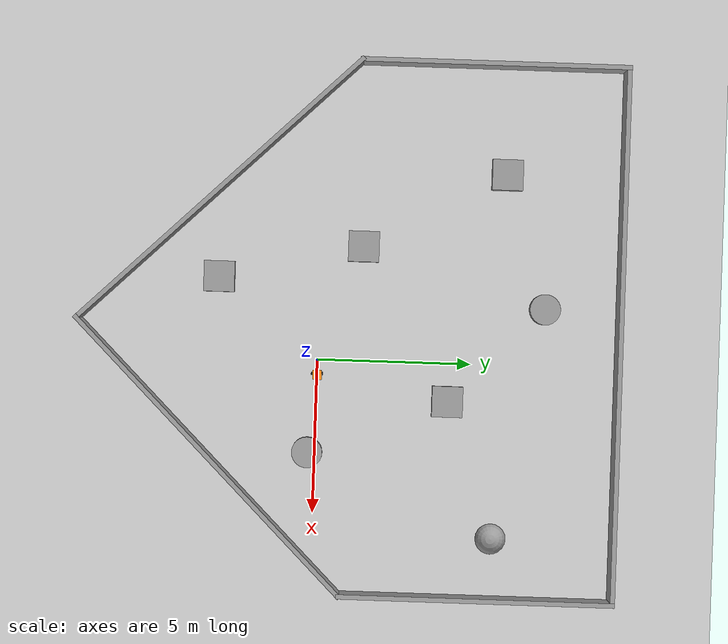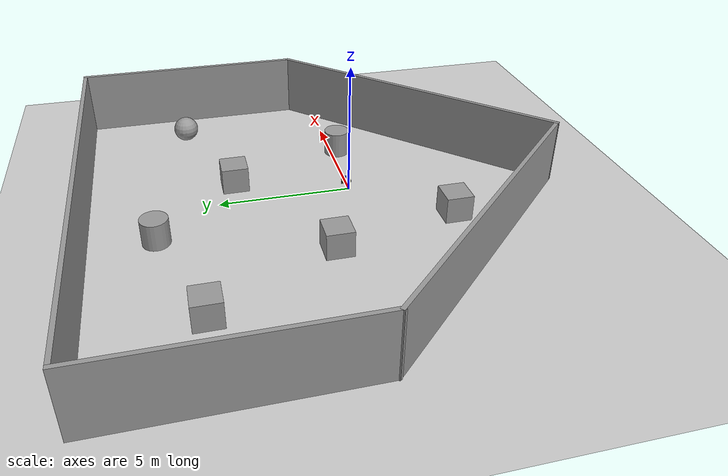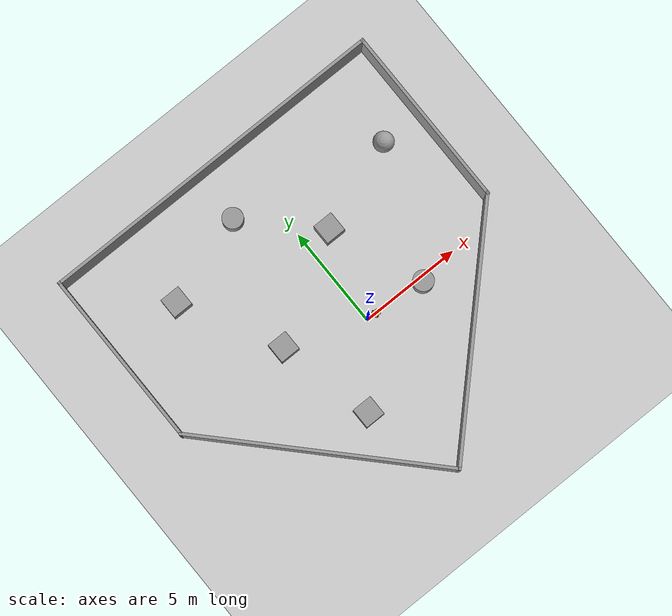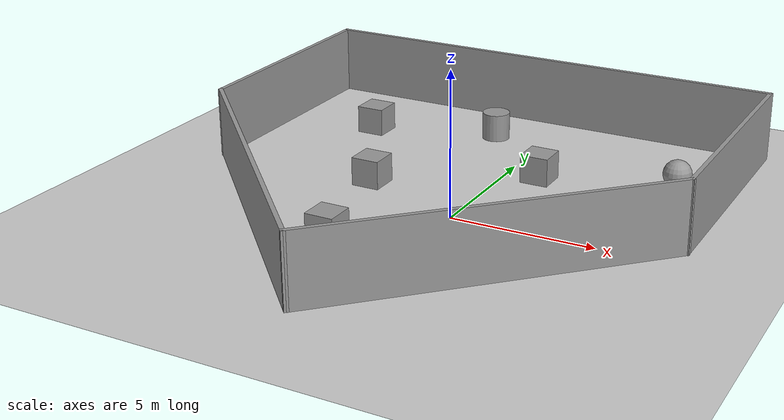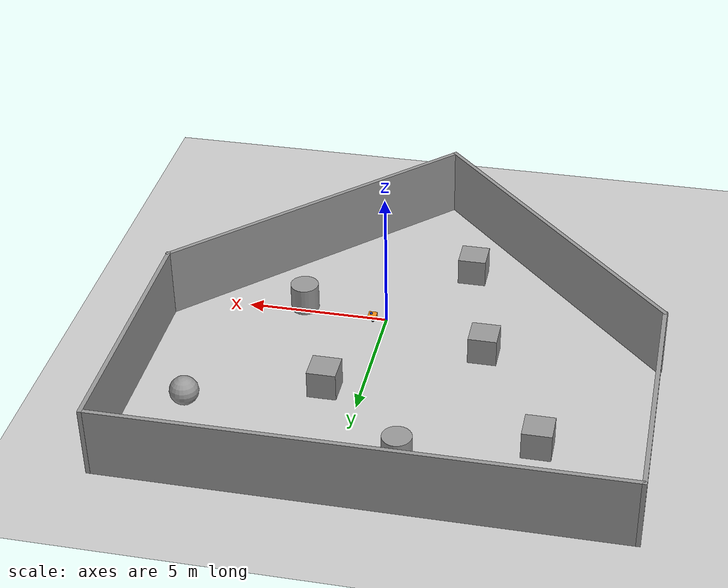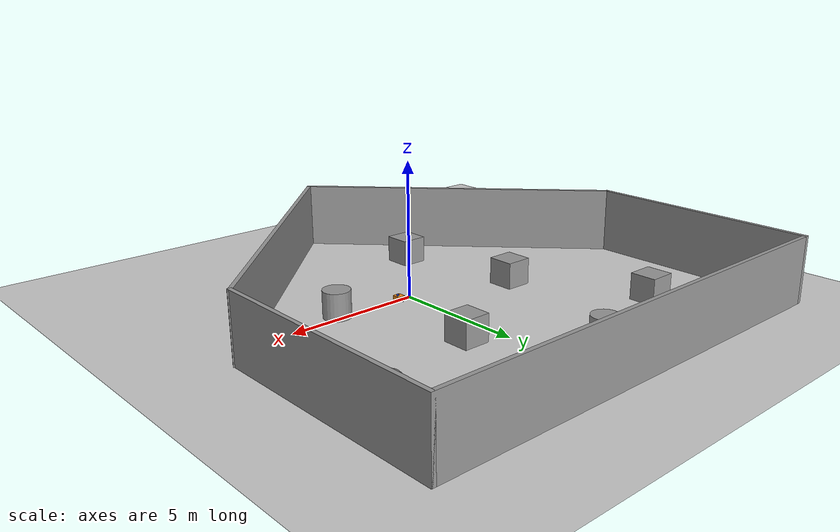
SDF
<sdf version="1.7">
 <world name="default">
  <light name="sun" type="directional">
   <pose>0 0 10 0 -0 0</pose>
   <diffuse>0.8 0.8 0.8 1</diffuse>
   <specular>0.2 0.2 0.2 1</specular>
   <attenuation>
    <range>1000</range>
    <constant>0.9</constant>
    <linear>0.01</linear>
    <quadratic>0.001</quadratic>
   </attenuation>
   <direction>-0.5 0.1 -0.9</direction>
   <spot><inner_angle>0</inner_angle><outer_angle>0</outer_angle><falloff>0</falloff></spot>
  </light>
  <model name="ground_plane">
   <static>1</static>
   <link name="link">
    <collision name="collision">
     <geometry><plane><normal>0 0 1</normal><size>100 100</size></plane></geometry>
     <surface>
      <contact><collide_bitmask>65535</collide_bitmask></contact>
      <friction><ode><mu>100</mu><mu2>50</mu2></ode></friction>
     </surface>
    </collision>
    <visual name="visual">
     <cast_shadows>0</cast_shadows>
     <geometry><plane><normal>0 0 1</normal><size>100 100</size></plane></geometry>
     <material>
      <script><uri>file://media/materials/scripts/gazebo.material</uri><name>Gazebo/Grey</name></script>
     </material>
    </visual>
   </link>
  </model>
  <gravity>0 0 -9.8</gravity>
  <magnetic_field>6e-06 2.3e-05 -4.2e-05</magnetic_field>
  <atmosphere type="adiabatic"/>
  <physics type="ode">
   <max_step_size>0.001</max_step_size>
   <real_time_factor>1</real_time_factor>
   <real_time_update_rate>1000</real_time_update_rate>
  </physics>
  <scene><ambient>0.4 0.4 0.4 1</ambient><background>0.7 0.7 0.7 1</background><shadows>1</shadows></scene>
  <audio><device>default</device></audio>
  <spherical_coordinates>
   <surface_model>EARTH_WGS84</surface_model>
   <latitude_deg>0</latitude_deg>
   <longitude_deg>0</longitude_deg>
   <elevation>0</elevation>
   <heading_deg>0</heading_deg>
  </spherical_coordinates>
  <model name="navigation_test">
   <link name="base_link">
    <inertial>
     <pose>0.079 0 0.1075 0 -0 0</pose>
     <mass>1</mass>
     <inertia>
      <ixx>0.00859708</ixx>
      <ixy>0</ixy>
      <ixz>-0.0003825</ixz>
      <iyy>0.00956608</iyy>
      <iyz>0</iyz>
      <izz>0.009069</izz>
     </inertia>
    </inertial>
    <collision name="base_link_fixed_joint_lump__chassis_collision">
     <pose>0.05 0 0.075 0 -0 0</pose>
     <geometry><box><size>0.3 0.3 0.15</size></box></geometry>
    </collision>
    <collision name="base_link_fixed_joint_lump__caster_wheel_collision_1">
     <pose>0.14 0 0 0 -0 0</pose>
     <geometry><sphere><radius>0.05</radius></sphere></geometry>
     <surface><friction><ode><mu>0.001</mu><mu2>0.001</mu2></ode></friction></surface>
    </collision>
    <collision name="base_link_fixed_joint_lump__laser_frame_collision_2">
     <pose>0.1 0 0.175 0 -0 0</pose>
     <geometry><cylinder><length>0.04</length><radius>0.05</radius></cylinder></geometry>
    </collision>
    <visual name="base_link_fixed_joint_lump__chassis_visual">
     <pose>0.05 0 0.075 0 -0 0</pose>
     <geometry><box><size>0.3 0.3 0.15</size></box></geometry>
     <material>
      <script><name>Gazebo/Orange</name><uri>file://media/materials/scripts/gazebo.material</uri></script>
     </material>
    </visual>
    <visual name="base_link_fixed_joint_lump__caster_wheel_visual_1">
     <pose>0.14 0 0 0 -0 0</pose>
     <geometry><sphere><radius>0.05</radius></sphere></geometry>
     <material>
      <script><name>Gazebo/White</name><uri>file://media/materials/scripts/gazebo.material</uri></script>
     </material>
    </visual>
    <visual name="base_link_fixed_joint_lump__laser_frame_visual_2">
     <pose>0.1 0 0.175 0 -0 0</pose>
     <geometry><cylinder><length>0.04</length><radius>0.05</radius></cylinder></geometry>
     <material>
      <script><name>Gazebo/Blue</name><uri>file://media/materials/scripts/gazebo.material</uri></script>
     </material>
    </visual>
    <sensor name="laser" type="ray">
     <visualize>1</visualize>
     <update_rate>10</update_rate>
     <ray>
      <scan>
       <horizontal>
        <samples>360</samples>
        <min_angle>-3.14</min_angle>
        <max_angle>3.14</max_angle>
        <resolution>1</resolution>
       </horizontal>
       <vertical><samples>1</samples><min_angle>0</min_angle><max_angle>0</max_angle></vertical>
      </scan>
      <range><min>0.3</min><max>12</max></range>
     </ray>
     <plugin name="laser_controller" filename="libgazebo_ros_ray_sensor.so">
      <ros><argument>~/out:=scan</argument></ros>
      <output_type>sensor_msgs/LaserScan</output_type>
      <frame_name>laser_frame</frame_name>
     </plugin>
     <pose>0.1 0 0.175 0 -0 0</pose>
    </sensor>
   </link>
   <joint name="left_wheel_joint" type="revolute">
    <pose relative_to="base_link">0 0.175 0 -1.5708 0 0</pose>
    <parent>base_link</parent>
    <child>left_wheel</child>
    <axis>
     <xyz>0 0 1</xyz>
     <limit><lower>-1e+16</lower><upper>1e+16</upper></limit>
     <dynamics><spring_reference>0</spring_reference><spring_stiffness>0</spring_stiffness></dynamics>
    </axis>
   </joint>
   <link name="left_wheel">
    <pose relative_to="left_wheel_joint">0 0 0 0 -0 0</pose>
    <inertial>
     <mass>0.1</mass>
     <inertia>
      <ixx>7.58333e-05</ixx>
      <ixy>0</ixy>
      <ixz>0</ixz>
      <iyy>7.58333e-05</iyy>
      <iyz>0</iyz>
      <izz>0.000125</izz>
     </inertia>
    </inertial>
    <collision name="left_wheel_collision">
     <geometry><cylinder><length>0.04</length><radius>0.05</radius></cylinder></geometry>
    </collision>
    <visual name="left_wheel_visual">
     <geometry><cylinder><length>0.04</length><radius>0.05</radius></cylinder></geometry>
     <material>
      <script><name>Gazebo/Black</name><uri>file://media/materials/scripts/gazebo.material</uri></script>
     </material>
    </visual>
   </link>
   <joint name="right_wheel_joint" type="revolute">
    <pose relative_to="base_link">0 -0.175 0 1.5708 -0 0</pose>
    <parent>base_link</parent>
    <child>right_wheel</child>
    <axis>
     <xyz>0 0 -1</xyz>
     <limit><lower>-1e+16</lower><upper>1e+16</upper></limit>
     <dynamics><spring_reference>0</spring_reference><spring_stiffness>0</spring_stiffness></dynamics>
    </axis>
   </joint>
   <link name="right_wheel">
    <pose relative_to="right_wheel_joint">0 0 0 0 -0 0</pose>
    <inertial>
     <mass>0.1</mass>
     <inertia>
      <ixx>7.58333e-05</ixx>
      <ixy>0</ixy>
      <ixz>0</ixz>
      <iyy>7.58333e-05</iyy>
      <iyz>0</iyz>
      <izz>0.000125</izz>
     </inertia>
    </inertial>
    <collision name="right_wheel_collision">
     <geometry><cylinder><length>0.04</length><radius>0.05</radius></cylinder></geometry>
    </collision>
    <visual name="right_wheel_visual">
     <geometry><cylinder><length>0.04</length><radius>0.05</radius></cylinder></geometry>
     <material>
      <script><name>Gazebo/Black</name><uri>file://media/materials/scripts/gazebo.material</uri></script>
     </material>
    </visual>
   </link>
   <static>0</static>
   <plugin name="diff_drive" filename="libgazebo_ros_diff_drive.so">
    <left_joint>left_wheel_joint</left_joint>
    <right_joint>right_wheel_joint</right_joint>
    <wheel_separation>0.35</wheel_separation>
    <wheel_diameter>0.1</wheel_diameter>
    <max_wheel_torque>200</max_wheel_torque>
    <max_wheel_acceleration>10.0</max_wheel_acceleration>
    <odometry_frame>odom</odometry_frame>
    <robot_base_frame>base_link</robot_base_frame>
    <publish_odom>1</publish_odom>
    <publish_odom_tf>1</publish_odom_tf>
    <publish_wheel_tf>1</publish_wheel_tf>
   </plugin>
   <pose>0.453483 0.00022 0.049998 -1.1e-05 -1.2e-05 0.005585</pose>
  </model>
  <model name="Untitled">
   <pose>-1.07221 0.955784 0 0 -0 0</pose>
   <link name="Wall_10">
    <collision name="Wall_10_Collision">
     <geometry><box><size>9 0.15 2.5</size></box></geometry>
     <pose>0 0 1.25 0 -0 0</pose>
    </collision>
    <visual name="Wall_10_Visual">
     <pose>0 0 1.25 0 -0 0</pose>
     <geometry><box><size>9 0.15 2.5</size></box></geometry>
     <material>
      <script><uri>file://media/materials/scripts/gazebo.material</uri><name>Gazebo/Grey</name></script>
      <ambient>1 1 1 1</ambient>
     </material>
     <meta><layer>0</layer></meta>
    </visual>
    <pose>8.67499 4.38192 0 0 -0 -1.5708</pose>
   </link>
   <link name="Wall_11">
    <collision name="Wall_11_Collision">
     <geometry><box><size>12.5 0.15 2.5</size></box></geometry>
     <pose>0 0 1.25 0 -0 0</pose>
    </collision>
    <visual name="Wall_11_Visual">
     <pose>0 0 1.25 0 -0 0</pose>
     <geometry><box><size>12.5 0.15 2.5</size></box></geometry>
     <material>
      <script><uri>file://media/materials/scripts/gazebo.material</uri><name>Gazebo/Grey</name></script>
      <ambient>1 1 1 1</ambient>
     </material>
     <meta><layer>0</layer></meta>
    </visual>
    <pose>4.3086 -4.40947 0 0 -0 -2.35619</pose>
   </link>
   <link name="Wall_12">
    <collision name="Wall_12_Collision">
     <geometry><box><size>12.5978 0.15 2.5</size></box></geometry>
     <pose>0 0 1.25 0 -0 0</pose>
    </collision>
    <visual name="Wall_12_Visual">
     <pose>0 0 1.25 0 -0 0</pose>
     <geometry><box><size>12.5978 0.15 2.5</size></box></geometry>
     <material>
      <script><uri>file://media/materials/scripts/gazebo.material</uri><name>Gazebo/Grey</name></script>
      <ambient>1 1 1 1</ambient>
     </material>
     <meta><layer>0</layer></meta>
    </visual>
    <pose>-4.3664 -4.28447 0 0 -0 2.33543</pose>
   </link>
   <link name="Wall_8">
    <collision name="Wall_8_Collision">
     <geometry><box><size>8.75 0.15 2.5</size></box></geometry>
     <pose>0 0 1.25 0 -0 0</pose>
    </collision>
    <visual name="Wall_8_Visual">
     <pose>0 0 1.25 0 -0 0</pose>
     <geometry><box><size>8.75 0.15 2.5</size></box></geometry>
     <material>
      <script><uri>file://media/materials/scripts/gazebo.material</uri><name>Gazebo/Grey</name></script>
      <ambient>1 1 1 1</ambient>
     </material>
     <meta><layer>0</layer></meta>
    </visual>
    <pose>-8.67501 4.50692 0 0 -0 1.5708</pose>
   </link>
   <link name="Wall_9">
    <collision name="Wall_9_Collision">
     <geometry><box><size>17.5 0.15 2.5</size></box></geometry>
     <pose>0 0 1.25 0 -0 0</pose>
    </collision>
    <visual name="Wall_9_Visual">
     <pose>0 0 1.25 0 -0 0</pose>
     <geometry><box><size>17.5 0.15 2.5</size></box></geometry>
     <material>
      <script><uri>file://media/materials/scripts/gazebo.material</uri><name>Gazebo/Grey</name></script>
      <ambient>1 1 1 1</ambient>
     </material>
     <meta><layer>0</layer></meta>
    </visual>
    <pose>-1.2e-05 8.80692 0 0 -0 0</pose>
   </link>
   <static>1</static>
  </model>
  <model name="unit_box">
   <pose>-6.20922 5.9944 0.499995 0 1e-05 0</pose>
   <link name="link">
    <inertial>
     <mass>1</mass>
     <inertia>
      <ixx>0.166667</ixx>
      <ixy>0</ixy>
      <ixz>0</ixz>
      <iyy>0.166667</iyy>
      <iyz>0</iyz>
      <izz>0.166667</izz>
     </inertia>
    </inertial>
    <collision name="collision"><geometry><box><size>1 1 1</size></box></geometry></collision>
    <visual name="visual">
     <geometry><box><size>1 1 1</size></box></geometry>
     <material>
      <script><name>Gazebo/Grey</name><uri>file://media/materials/scripts/gazebo.material</uri></script>
     </material>
    </visual>
   </link>
  </model>
  <model name="unit_box_0">
   <pose>1.23391 4.26619 0.499995 -1e-05 -0 -0</pose>
   <link name="link">
    <inertial>
     <mass>1</mass>
     <inertia>
      <ixx>0.166667</ixx>
      <ixy>0</ixy>
      <ixz>0</ixz>
      <iyy>0.166667</iyy>
      <iyz>0</iyz>
      <izz>0.166667</izz>
     </inertia>
    </inertial>
    <collision name="collision"><geometry><box><size>1 1 1</size></box></geometry></collision>
    <visual name="visual">
     <geometry><box><size>1 1 1</size></box></geometry>
     <material>
      <script><name>Gazebo/Grey</name><uri>file://media/materials/scripts/gazebo.material</uri></script>
     </material>
    </visual>
   </link>
  </model>
  <model name="unit_box_1">
   <pose>-3.73068 1.39057 0.499995 0 1e-05 0</pose>
   <link name="link">
    <inertial>
     <mass>1</mass>
     <inertia>
      <ixx>0.166667</ixx>
      <ixy>0</ixy>
      <ixz>0</ixz>
      <iyy>0.166667</iyy>
      <iyz>0</iyz>
      <izz>0.166667</izz>
     </inertia>
    </inertial>
    <collision name="collision"><geometry><box><size>1 1 1</size></box></geometry></collision>
    <visual name="visual">
     <geometry><box><size>1 1 1</size></box></geometry>
     <material>
      <script><name>Gazebo/Grey</name><uri>file://media/materials/scripts/gazebo.material</uri></script>
     </material>
    </visual>
   </link>
  </model>
  <model name="unit_cylinder">
   <pose>3.02704 -0.248402 0.499993 -3e-06 -3e-06 0</pose>
   <link name="link">
    <inertial>
     <mass>1</mass>
     <inertia><ixx>0.145833</ixx><ixy>0</ixy><ixz>0</ixz><iyy>0.145833</iyy><iyz>0</iyz><izz>0.125</izz></inertia>
    </inertial>
    <collision name="collision">
     <geometry><cylinder><radius>0.5</radius><length>1</length></cylinder></geometry>
    </collision>
    <visual name="visual">
     <geometry><cylinder><radius>0.5</radius><length>1</length></cylinder></geometry>
     <material>
      <script><name>Gazebo/Grey</name><uri>file://media/materials/scripts/gazebo.material</uri></script>
     </material>
    </visual>
   </link>
  </model>
  <model name="unit_sphere">
   <pose>5.65625 5.81259 0.5 0 -0 0</pose>
   <link name="link">
    <inertial>
     <mass>1</mass>
     <inertia><ixx>0.1</ixx><ixy>0</ixy><ixz>0</ixz><iyy>0.1</iyy><iyz>0</iyz><izz>0.1</izz></inertia>
    </inertial>
    <collision name="collision"><geometry><sphere><radius>0.5</radius></sphere></geometry></collision>
    <visual name="visual">
     <geometry><sphere><radius>0.5</radius></sphere></geometry>
     <material>
      <script><name>Gazebo/Grey</name><uri>file://media/materials/scripts/gazebo.material</uri></script>
     </material>
    </visual>
   </link>
  </model>
  <model name="unit_box_2">
   <pose>-2.61273 -3.27935 0.499995 -1e-05 -0 0</pose>
   <link name="link">
    <inertial>
     <mass>1</mass>
     <inertia>
      <ixx>0.166667</ixx>
      <ixy>0</ixy>
      <ixz>0</ixz>
      <iyy>0.166667</iyy>
      <iyz>0</iyz>
      <izz>0.166667</izz>
     </inertia>
    </inertial>
    <collision name="collision"><geometry><box><size>1 1 1</size></box></geometry></collision>
    <visual name="visual">
     <geometry><box><size>1 1 1</size></box></geometry>
     <material>
      <script><name>Gazebo/Grey</name><uri>file://media/materials/scripts/gazebo.material</uri></script>
     </material>
    </visual>
   </link>
  </model>
  <model name="unit_cylinder_0">
   <pose>-1.86492 7.35283 0.499997 3e-06 4e-06 -0</pose>
   <link name="link">
    <inertial>
     <mass>1</mass>
     <inertia><ixx>0.145833</ixx><ixy>0</ixy><ixz>0</ixz><iyy>0.145833</iyy><iyz>0</iyz><izz>0.125</izz></inertia>
    </inertial>
    <collision name="collision">
     <geometry><cylinder><radius>0.5</radius><length>1</length></cylinder></geometry>
    </collision>
    <visual name="visual">
     <geometry><cylinder><radius>0.5</radius><length>1</length></cylinder></geometry>
     <material>
      <script><name>Gazebo/Grey</name><uri>file://media/materials/scripts/gazebo.material</uri></script>
     </material>
    </visual>
   </link>
  </model>
 </world>
</sdf>
